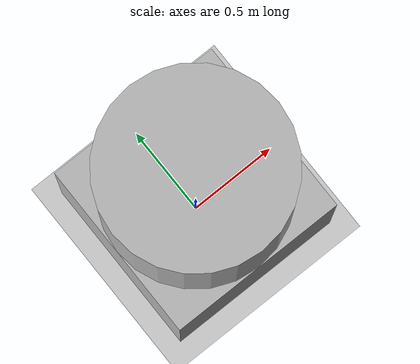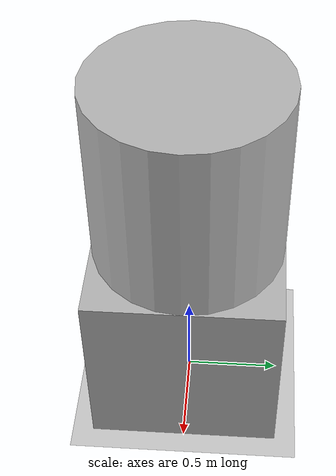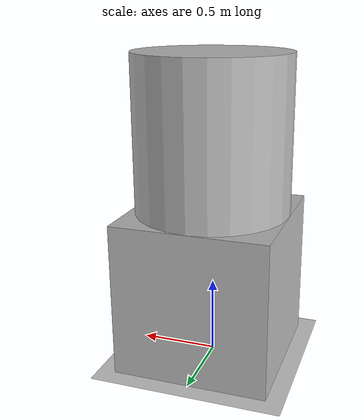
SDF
<?xml version="1.0" ?>
<sdf version="1.8">
  <world name="map">
    <physics name="1ms" type="ignore">
      <max_step_size>0.001</max_step_size>
      <real_time_factor>1.0</real_time_factor>
    </physics>

    <plugin filename="gz-sim-physics-system"
      name="gz::sim::systems::Physics">
    </plugin>
    <plugin
      filename="gz-sim-sensors-system"
      name="gz::sim::systems::Sensors">
      <render_engine>ogre2</render_engine>
    </plugin>
    <plugin filename="gz-sim-user-commands-system"
      name="gz::sim::systems::UserCommands">
    </plugin>
    <plugin filename="gz-sim-scene-broadcaster-system"
      name="gz::sim::systems::SceneBroadcaster">
    </plugin>
    <plugin filename="gz-sim-imu-system"
      name="gz::sim::systems::Imu">
    </plugin>

    <scene>
      <ambient>1.0 1.0 1.0</ambient>
      <background>0.8 0.8 0.8</background>
      <sky></sky>
    </scene>

    <light type="directional" name="sun">
      <cast_shadows>true</cast_shadows>
      <pose>0 0 10 0 0 0</pose>
      <diffuse>0.8 0.8 0.8 1</diffuse>
      <specular>0.8 0.8 0.8 1</specular>
      <attenuation>
        <range>1000</range>
        <constant>0.9</constant>
        <linear>0.01</linear>
        <quadratic>0.001</quadratic>
      </attenuation>
      <direction>-0.5 0.1 -0.9</direction>
    </light>

    <model name="ground_plane">
      <static>true</static>
      <link name="link">
        <collision name="collision">
          <geometry>
            <plane>
              <normal>0 0 1</normal>
              <size>100 100</size>
            </plane>
          </geometry>
        </collision>
        <visual name="visual">
          <geometry>
            <plane>
              <normal>0 0 1</normal>
              <size>100 100</size>
            </plane>
          </geometry>
          <material>
            <ambient>0.8 0.8 0.8 1</ambient>
            <diffuse>0.8 0.8 0.8 1</diffuse>
            <specular>0.8 0.8 0.8 1</specular>
          </material>
        </visual>
      </link>
    </model>

    <model name="model_in_world">
      <pose>0 0 0.5 0 0 0</pose>

      <link name="base_link">
        <pose>0 0 0 0 0 0</pose>
        <inertial>
          <mass>1</mass>
          <inertia>
            <ixx>0.166</ixx>
            <ixy>0</ixy>
            <ixz>0</ixz>
            <iyy>0.166</iyy>
            <iyz>0</iyz>
            <izz>0.166</izz>
          </inertia>
        </inertial>
        <visual name="visual">
          <geometry>
            <box>
              <size>1 1 1</size>
            </box>
          </geometry>
        </visual>
        <collision name="collision">
          <geometry>
            <box>
              <size>1 1 1</size>
            </box>
          </geometry>
        </collision>
      </link>

      <link name="part_link">
        <pose>0 0 1.0 0 0 0</pose>
        <inertial>
          <mass>1</mass>
          <inertia>
            <ixx>0.166</ixx>
            <ixy>0</ixy>
            <ixz>0</ixz>
            <iyy>0.166</iyy>
            <iyz>0</iyz>
            <izz>0.166</izz>
          </inertia>
        </inertial>
        <visual name="visual">
          <geometry>
            <cylinder>
              <radius>0.5</radius>
              <length>1</length>
            </cylinder>
          </geometry>
        </visual>
        <collision name="collision">
          <geometry>
            <cylinder>
              <radius>0.5</radius>
              <length>1</length>
            </cylinder>
          </geometry>
        </collision>
      </link>

      <joint name="part_joint" type="revolute">
        <parent>base_link</parent>
        <child>part_link</child>
        <axis>
          <xyz>0 0 1</xyz>
        </axis>
      </joint>

      <plugin
        filename="gz-sim-joint-state-publisher-system"
        name="gz::sim::systems::JointStatePublisher">
      </plugin>

      <plugin
        filename="gz-sim-pose-publisher-system"
        name="gz::sim::systems::PosePublisher">
        <publish_link_pose>true</publish_link_pose>
        <publish_model_pose>true</publish_model_pose>
        <use_pose_vector_msg>true</use_pose_vector_msg>
        <static_publisher>true</static_publisher>
        <static_update_frequency>1</static_update_frequency>
      </plugin>

      <plugin
        filename="gz-sim-odometry-publisher-system"
        name="gz::sim::systems::OdometryPublisher">
        <odom_frame>model_in_world/odom</odom_frame>
        <robot_base_frame>model_in_world</robot_base_frame>
        <odom_topic>/model/model_in_world/odometry</odom_topic>
        <tf_topic>/model/model_in_world/pose</tf_topic>
        <dimensions>3</dimensions>
      </plugin>

    </model>

  </world>
</sdf>
